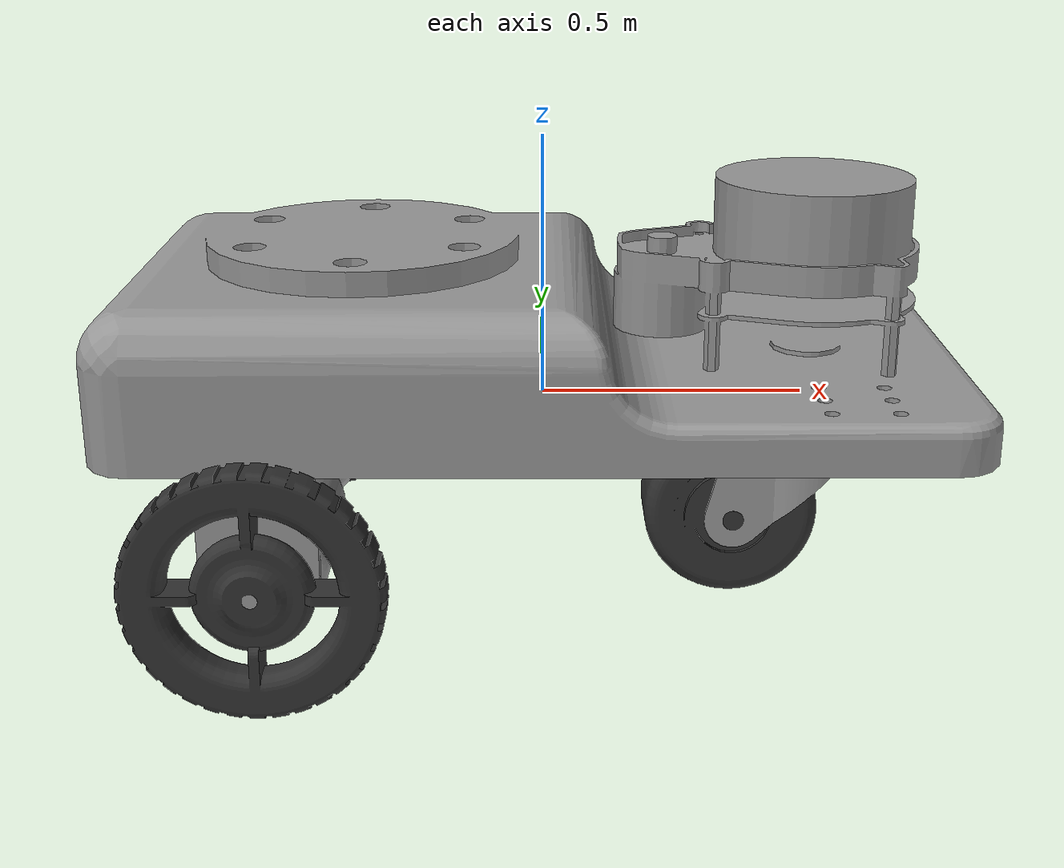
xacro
<?xml version="1.0" encoding="utf-8"?>
<robot xmlns:xacro="http://www.ros.org/wiki/xacro" name="2wd_warehouse_robot">

  <xacro:arg name="prefix" default="" />
  <xacro:arg name="robot_name" default="warehouse_bot" />
  <!-- ===========================
       base_footprint
  ============================ -->
  <link name="$(arg prefix)base_footprint"/>

  <joint name="$(arg prefix)base_joint" type="fixed">
    <parent link="$(arg prefix)base_footprint"/>
    <child link="$(arg prefix)base_link"/>
    <origin xyz="0 0 0" rpy="0 0 0"/>
  </joint>

  <!-- ===========================
       Base link
  ============================ -->
  <link name="$(arg prefix)base_link">
    <inertial>
      <!-- Reduced mass for simulation stability (Original ~305kg -> Scaled to ~30kg) -->
      <origin xyz="-0.2043 0 0.0939" rpy="0 0 0" />
      <mass value="30.0" />
      <inertia ixx="1.99" ixy="0.0" ixz="0.32"
               iyy="4.47" iyz="0.0" izz="6.06" />
    </inertial>
    <visual>
      <origin xyz="0 0 0" rpy="0 0 0" />
      <geometry>
        <mesh filename="package://warehouse_robot_description/meshes/2wd/base_link.STL" />
      </geometry>
      <material name="Grey">
        <color rgba="0.6 0.6 0.6 1" />
      </material>
    </visual>
    <collision>
      <origin xyz="0 0 0" rpy="0 0 0" />
      <geometry>
        <box size="1.55 0.8 0.5"/>
      </geometry>
    </collision>
  </link>

  <!-- ===========================
       Wheels Macro
  ============================ -->
  <!-- Left Wheel -->
  <link name="$(arg prefix)left_wheel">
    <inertial>
      <origin xyz="0 0 0.033" rpy="0 0 0" />
      <mass value="2.0" /> <!-- Scaled down -->
      <inertia ixx="0.01" ixy="0" ixz="0" iyy="0.01" iyz="0" izz="0.02" />
    </inertial>
    <visual>
      <origin xyz="0 0 0" rpy="0 0 0" />
      <geometry>
        <mesh filename="package://warehouse_robot_description/meshes/2wd/left_wheel.STL" />
      </geometry>
      <material name="Black">
        <color rgba="0.2 0.2 0.2 1"/>
      </material>
    </visual>
    <collision>
      <origin xyz="0 0 0" rpy="0 0 0" />
      <geometry>
        <cylinder radius="0.22" length="0.06"/>
      </geometry>
    </collision>
  </link>

  <joint name="$(arg prefix)left_wheel_joint" type="continuous">
    <origin xyz="-0.48569 0.55575 -0.1755" rpy="1.5708 0 0" />
    <parent link="$(arg prefix)base_link" />
    <child link="$(arg prefix)left_wheel" />
    <axis xyz="0 0 -1" />
    <limit effort="100" velocity="10" />
  </joint>

  <!-- Right Wheel -->
  <link name="$(arg prefix)right_wheel">
    <inertial>
      <origin xyz="0 0 -0.033" rpy="0 0 0" />
      <mass value="2.0" />
      <inertia ixx="0.01" ixy="0" ixz="0" iyy="0.01" iyz="0" izz="0.02" />
    </inertial>
    <visual>
      <origin xyz="0 0 0" rpy="0 0 0" />
      <geometry>
        <mesh filename="package://warehouse_robot_description/meshes/2wd/right_wheel.STL" />
      </geometry>
      <material name="Black">
        <color rgba="0.2 0.2 0.2 1"/>
      </material>
    </visual>
    <collision>
      <origin xyz="0 0 0" rpy="0 0 0" />
      <geometry>
        <cylinder radius="0.22" length="0.06"/>
      </geometry>
    </collision>
  </link>

  <joint name="$(arg prefix)right_wheel_joint" type="continuous">
    <origin xyz="-0.48569 -0.55575 -0.1755" rpy="1.5708 0 0" />
    <parent link="$(arg prefix)base_link" />
    <child link="$(arg prefix)right_wheel" />
    <axis xyz="0 0 -1" />
    <limit effort="100" velocity="10" />
  </joint>

  <!-- ===========================
       Caster Wheel Assembly
  ============================ -->
  <link name="$(arg prefix)caster_connection">
    <inertial>
      <origin xyz="-0.03 0 -0.11" rpy="0 0 0" />
      <mass value="0.5" />
      <inertia ixx="0.002" ixy="0" ixz="0" iyy="0.002" iyz="0" izz="0.002" />
    </inertial>
    <visual>
      <origin xyz="0 0 0" rpy="0 0 0" />
      <geometry>
        <mesh filename="package://warehouse_robot_description/meshes/2wd/caster_connection.STL" />
      </geometry>
      <material name="Grey">
        <color rgba="0.6 0.6 0.6 1" />
      </material>
    </visual>
    <collision>
      <origin xyz="0 0 0" rpy="0 0 0" />
      <geometry>
        <mesh filename="package://warehouse_robot_description/meshes/2wd/caster_connection.STL" />
      </geometry>
    </collision>
  </link>

  <joint name="$(arg prefix)caster_connection_joint" type="continuous">
    <origin xyz="0.50656 0 0" rpy="0 0 0" />
    <parent link="$(arg prefix)base_link" />
    <child link="$(arg prefix)caster_connection" />
    <axis xyz="0 0 -1" />
  </joint>

  <link name="$(arg prefix)caster_wheel">
    <inertial>
      <origin xyz="0 0 0" rpy="0 0 0" />
      <mass value="1.0" />
      <inertia ixx="0.01" ixy="0" ixz="0" iyy="0.01" iyz="0" izz="0.01" />
    </inertial>
    <visual>
      <origin xyz="0 0 0" rpy="0 0 0" />
      <geometry>
        <mesh filename="package://warehouse_robot_description/meshes/2wd/caster_wheel.STL" />
      </geometry>
      <material name="Black">
        <color rgba="0.2 0.2 0.2 1"/>
      </material>
    </visual>
    <collision>
      <origin xyz="0 0 0" rpy="0 0 0" />
      <geometry>
        <mesh filename="package://warehouse_robot_description/meshes/2wd/caster_wheel.STL" />
      </geometry>
    </collision>
  </link>

  <joint name="$(arg prefix)caster_wheel_joint" type="continuous">
    <origin xyz="-0.13927 -0.0053 -0.22785" rpy="1.5708 0 0" />
    <parent link="$(arg prefix)caster_connection" />
    <child link="$(arg prefix)caster_wheel" />
    <axis xyz="0 0 1" />
  </joint>

  <!-- Frictionless Caster (Critical for smooth turning) -->
  <gazebo reference="$(arg prefix)caster_wheel">
    <mu1>200.0</mu1>
    <mu2>100.0</mu2>
    <kp>1000000.0</kp>
    <kd>1.0</kd>
  </gazebo>

  <gazebo reference="$(arg prefix)caster_connection">
    <mu1>200.0</mu1>
    <mu2>100.0</mu2>
    <kp>1000000.0</kp>
    <kd>1.0</kd>
  </gazebo>

  <!-- ===========================
       Sensor (LiDAR)
  ============================ -->
 <link name="$(arg prefix)lidar_link">
    <inertial>
      <origin xyz="-0.0466543100833166 7.97140131680862E-14 0.119806074995455" rpy="0 0 0" />
      <mass value="2.61"/>
      <inertia ixx="0.0350676149959638" ixy="0" ixz="0.0106239993570244"
      iyy="0.0617612827662457" iyz="0" izz="0.0707762467956502" />
    </inertial>
    <visual>
      <origin xyz="0 0 0" rpy="0 0 0" />
      <geometry>
        <mesh filename="package://warehouse_robot_description/meshes/2wd/LiDAR.STL" />
      </geometry>
      <material name="Grey">
        <color rgba="0.6 0.6 0.6 1" />
      </material>
    </visual>
    <collision>
      <origin xyz="0 0 0" rpy="0 0 0" />
      <geometry>
        <mesh filename="package://warehouse_robot_description/meshes/2wd/LiDAR.STL" />
      </geometry>
    </collision>
  </link>
  <joint
    name="$(arg prefix)lidar_joint"
    type="fixed">
    <origin xyz="0.50656 0 0.42188" rpy="3.1416 0 0" />
    <parent link="$(arg prefix)base_link" />
    <child link="$(arg prefix)lidar_link" />
    <axis xyz="0 0 0" />
  </joint>

  <gazebo reference="$(arg prefix)lidar_link">
    <sensor name="lidar" type="lidar">
      <always_on>true</always_on>
      <visualize>true</visualize>
      <topic>scan</topic>
      <update_rate>50</update_rate>
      <gz_frame_id>$(arg prefix)lidar_link</gz_frame_id>
      <frame_id>$(arg prefix)lidar_link</frame_id>
      <ray>
        <scan>
          <horizontal>
            <samples>360</samples>
            <resolution>1</resolution>
            <min_angle>-3.14</min_angle>
            <max_angle>3.14</max_angle>
          </horizontal>
        </scan>
        <range>
          <min>0.3</min>
          <max>12.0</max>
        </range>
      </ray>
      <plugin filename="libignition-gazebo-sensors-system.so"
              name="ignition::gazebo::systems::Sensors">
        <render_engine>ogre2</render_engine>
      </plugin>
    </sensor>
  </gazebo>
  <gazebo reference="$(arg prefix)lidar_link">
    <plugin filename="ignition-gazebo-pose-publisher-system.so"
            name="ignition::gazebo::systems::PosePublisher">
      <publish_tf>true</publish_tf>
      <frame_id>$(arg prefix)lidar_link</frame_id>
    </plugin>
  </gazebo>

  <!-- ===========================
       Diff Drive
  ============================ -->
  <gazebo>
    <plugin filename="libignition-gazebo-diff-drive-system.so"
            name="ignition::gazebo::systems::DiffDrive">

      <!-- Joints -->
      <left_joint>$(arg prefix)left_wheel_joint</left_joint>
      <right_joint>$(arg prefix)right_wheel_joint</right_joint>
      <wheel_separation>0.8</wheel_separation>
      <wheel_radius>0.1755</wheel_radius>

      <min_acceleration>-10</min_acceleration>
      <max_acceleration>10</max_acceleration>

      <!-- Topics -->
      <topic>/model/$(arg robot_name)/cmd_vel</topic>
      <odom_topic>/model/$(arg robot_name)/odom</odom_topic>
      <tf_topic>/model/$(arg robot_name)/tf</tf_topic>
      <frame_id>$(arg prefix)odom</frame_id>
      <child_frame_id>$(arg prefix)base_footprint</child_frame_id>
      <odom_publish_frequency>50</odom_publish_frequency>
    </plugin>
  </gazebo>

  <!-- ===========================
       Joint State
  ============================ -->
  <gazebo>
  <plugin filename="libignition-gazebo-joint-state-publisher-system.so"
          name="ignition::gazebo::systems::JointStatePublisher">
    <topic>/model/$(arg robot_name)/joint_states</topic>
  </plugin>
  </gazebo>

</robot>
